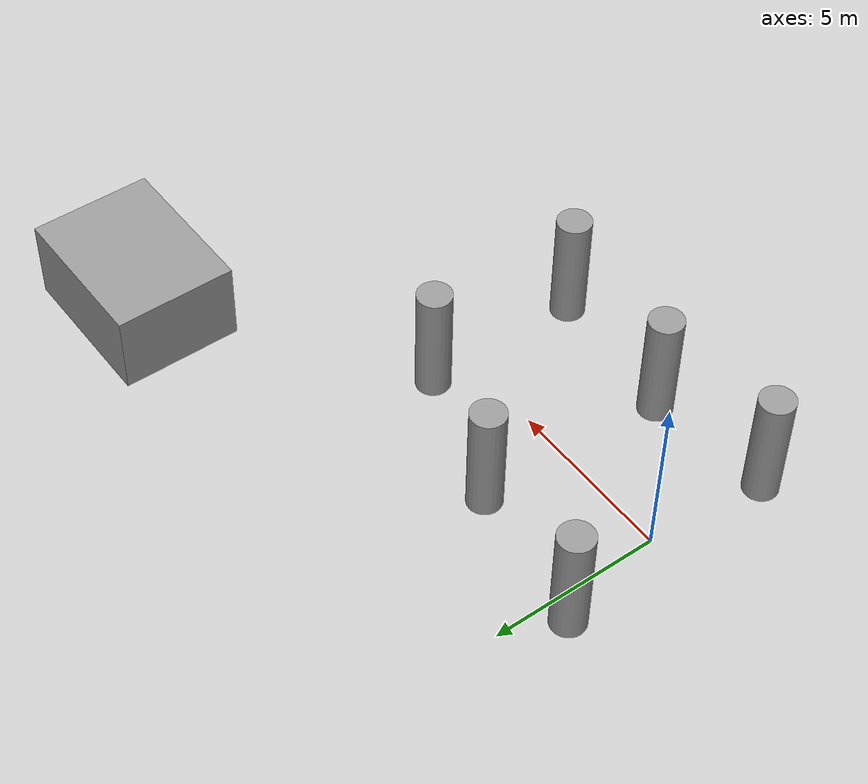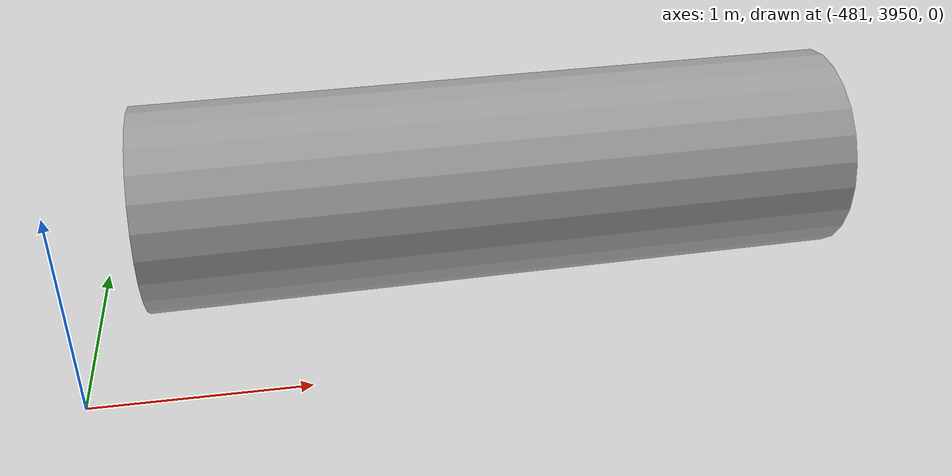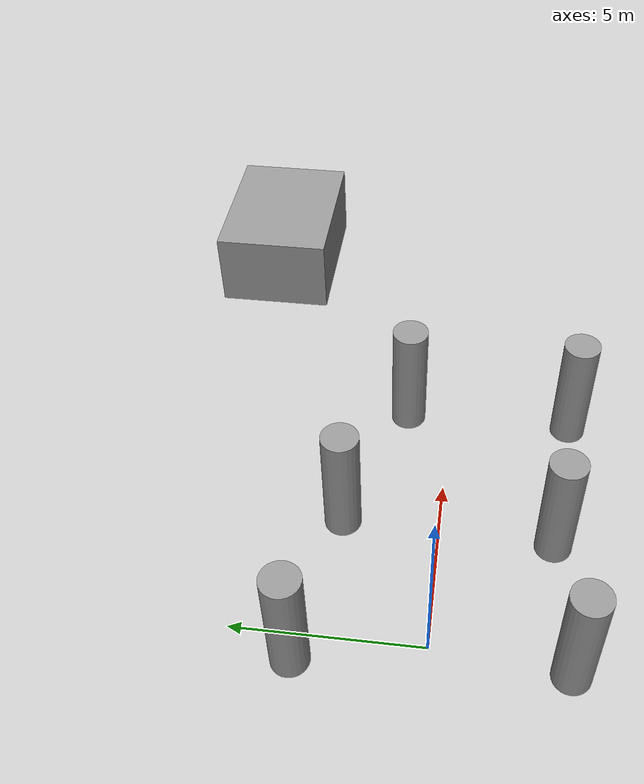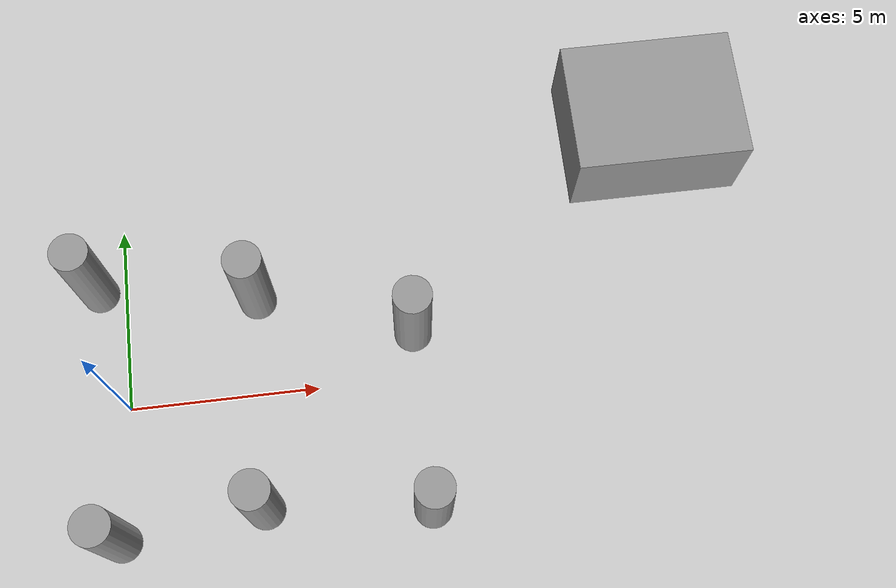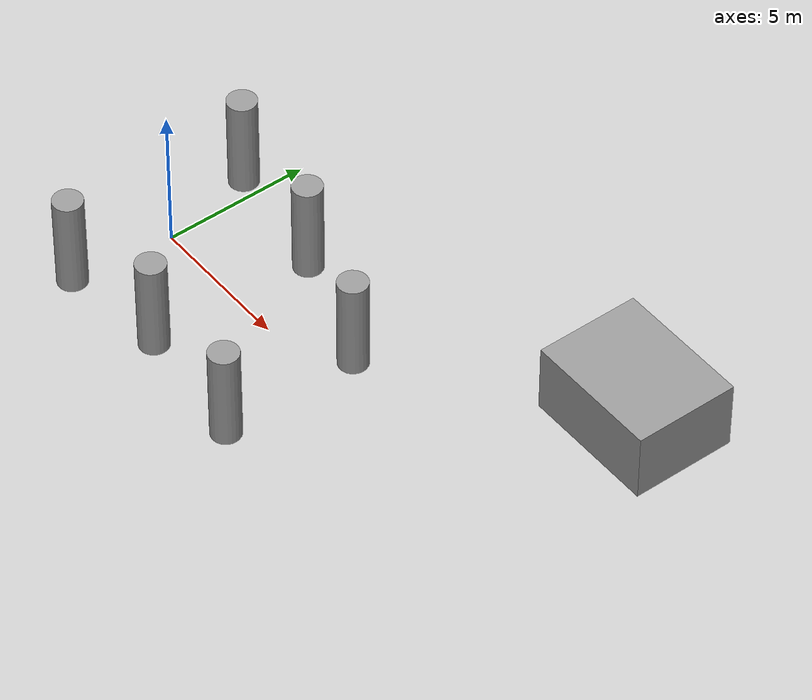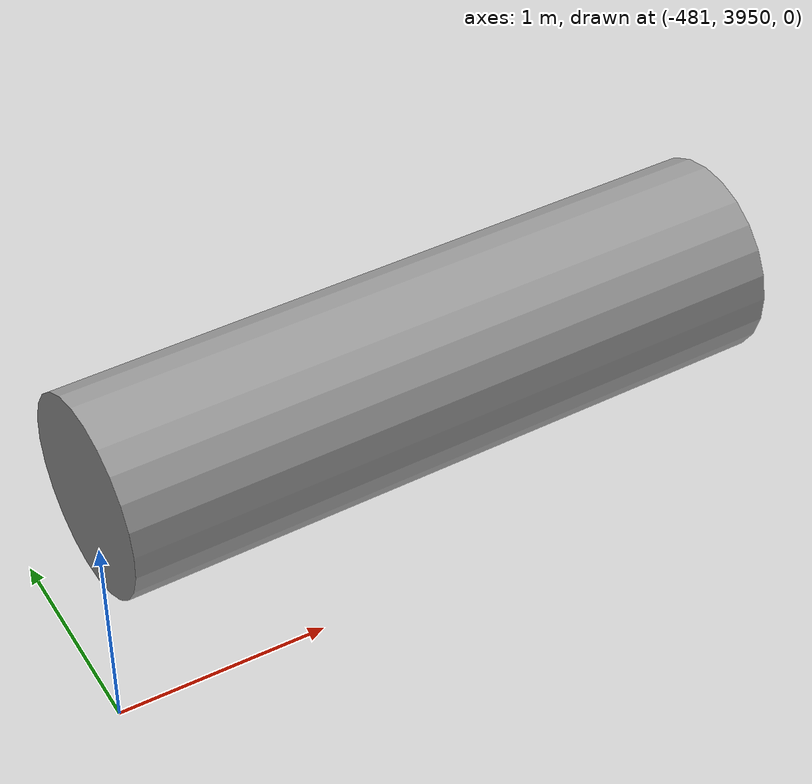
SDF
<sdf version="1.7">
 <world name="default">
  <physics type="ode">
   <ode>
    <solver>
     <type>quick</type>
     <iters>100</iters>
     <sor>1</sor>
     <use_dynamic_moi_rescaling>0</use_dynamic_moi_rescaling>
    </solver>
    <constraints>
     <cfm>0</cfm>
     <erp>0.9</erp>
     <contact_max_correcting_vel>0.1</contact_max_correcting_vel>
     <contact_surface_layer>0</contact_surface_layer>
    </constraints>
   </ode>
   <real_time_update_rate>-1</real_time_update_rate>
   <max_step_size>0.001</max_step_size>
   <real_time_factor>1</real_time_factor>
  </physics>
  <model name="ground_plane">
   <static>1</static>
   <link name="link">
    <collision name="collision">
     <geometry><plane><normal>0 0 1</normal><size>5000 5000</size></plane></geometry>
     <surface><friction><ode><mu>1</mu><mu2>1</mu2></ode></friction></surface>
    </collision>
    <visual name="runway">
     <pose>0 0 0.005 0 -0 0</pose>
     <cast_shadows>0</cast_shadows>
     <geometry><plane><normal>0 0 1</normal><size>1829 45</size></plane></geometry>
     <material>
      <script><uri>file://media/materials/scripts/gazebo.material</uri><name>Gazebo/Runway</name></script>
     </material>
    </visual>
   </link>
  </model>
  <light name="sun" type="directional">
   <pose>0 0 10 0 -0 0</pose>
   <diffuse>0.8 0.8 0.8 1</diffuse>
   <specular>0.2 0.2 0.2 1</specular>
   <attenuation>
    <range>1000</range>
    <constant>0.9</constant>
    <linear>0.01</linear>
    <quadratic>0.001</quadratic>
   </attenuation>
   <direction>-0.5 0.1 -0.9</direction>
   <spot><inner_angle>0</inner_angle><outer_angle>0</outer_angle><falloff>0</falloff></spot>
  </light>
  <gravity>0 0 -9.8</gravity>
  <magnetic_field>6e-06 2.3e-05 -4.2e-05</magnetic_field>
  <atmosphere type="adiabatic"/>
  <scene><ambient>0.4 0.4 0.4 1</ambient><background>0.7 0.7 0.7 1</background><shadows>1</shadows></scene>
  <spherical_coordinates>
   <surface_model>EARTH_WGS84</surface_model>
   <latitude_deg>0</latitude_deg>
   <longitude_deg>0</longitude_deg>
   <elevation>0</elevation>
   <heading_deg>0</heading_deg>
  </spherical_coordinates>
  <model name="unit_cylinder">
   <pose>3.36804 -3.05836 1.71249 0 0 -0.000168</pose>
   <link name="link">
    <inertial>
     <mass>1</mass>
     <inertia><ixx>0.145833</ixx><ixy>0</ixy><ixz>0</ixz><iyy>0.145833</iyy><iyz>0</iyz><izz>0.125</izz></inertia>
    </inertial>
    <collision name="collision">
     <geometry><cylinder><radius>0.5</radius><length>3.425</length></cylinder></geometry>
    </collision>
    <visual name="visual">
     <geometry><cylinder><radius>0.5</radius><length>3.425</length></cylinder></geometry>
     <material>
      <script><name>Gazebo/Grey</name><uri>file://media/materials/scripts/gazebo.material</uri></script>
     </material>
    </visual>
   </link>
  </model>
  <model name="unit_cylinder_clone_0">
   <pose>7.64412 1.23477 1.71249 0 0 -0.01514</pose>
   <link name="link">
    <inertial>
     <mass>1</mass>
     <inertia><ixx>0.145833</ixx><ixy>0</ixy><ixz>0</ixz><iyy>0.145833</iyy><iyz>0</iyz><izz>0.125</izz></inertia>
    </inertial>
    <collision name="collision">
     <geometry><cylinder><radius>0.5</radius><length>3.425</length></cylinder></geometry>
    </collision>
    <visual name="visual">
     <geometry><cylinder><radius>0.5</radius><length>3.425</length></cylinder></geometry>
     <material>
      <script><name>Gazebo/Grey</name><uri>file://media/materials/scripts/gazebo.material</uri></script>
     </material>
    </visual>
   </link>
  </model>
  <model name="unit_cylinder_clone_1">
   <pose>7.64632 -3.50159 1.71249 0 0 -5.8e-05</pose>
   <link name="link">
    <inertial>
     <mass>1</mass>
     <inertia><ixx>0.145833</ixx><ixy>0</ixy><ixz>0</ixz><iyy>0.145833</iyy><iyz>0</iyz><izz>0.125</izz></inertia>
    </inertial>
    <collision name="collision">
     <geometry><cylinder><radius>0.5</radius><length>3.425</length></cylinder></geometry>
    </collision>
    <visual name="visual">
     <geometry><cylinder><radius>0.5</radius><length>3.425</length></cylinder></geometry>
     <material>
      <script><name>Gazebo/Grey</name><uri>file://media/materials/scripts/gazebo.material</uri></script>
     </material>
    </visual>
   </link>
  </model>
  <model name="unit_cylinder_clone_2">
   <pose>-0.332742 -3.47485 1.71249 0 -0 4.2e-05</pose>
   <link name="link">
    <inertial>
     <mass>1</mass>
     <inertia><ixx>0.145833</ixx><ixy>0</ixy><ixz>0</ixz><iyy>0.145833</iyy><iyz>0</iyz><izz>0.125</izz></inertia>
    </inertial>
    <collision name="collision">
     <geometry><cylinder><radius>0.5</radius><length>3.425</length></cylinder></geometry>
    </collision>
    <visual name="visual">
     <geometry><cylinder><radius>0.5</radius><length>3.425</length></cylinder></geometry>
     <material>
      <script><name>Gazebo/Grey</name><uri>file://media/materials/scripts/gazebo.material</uri></script>
     </material>
    </visual>
   </link>
  </model>
  <model name="unit_cylinder_clone_3">
   <pose>-0.678736 3.28302 1.71249 0 -0 0.000357</pose>
   <link name="link">
    <inertial>
     <mass>1</mass>
     <inertia><ixx>0.145833</ixx><ixy>0</ixy><ixz>0</ixz><iyy>0.145833</iyy><iyz>0</iyz><izz>0.125</izz></inertia>
    </inertial>
    <collision name="collision">
     <geometry><cylinder><radius>0.5</radius><length>3.425</length></cylinder></geometry>
    </collision>
    <visual name="visual">
     <geometry><cylinder><radius>0.5</radius><length>3.425</length></cylinder></geometry>
     <material>
      <script><name>Gazebo/Grey</name><uri>file://media/materials/scripts/gazebo.material</uri></script>
     </material>
    </visual>
   </link>
  </model>
  <model name="unit_cylinder_clone_2_clone">
   <pose>-479.043 3950.86 0.5 -1.5708 -1.12645 -1.54372</pose>
   <link name="link">
    <inertial>
     <mass>1</mass>
     <inertia><ixx>0.145833</ixx><ixy>0</ixy><ixz>0</ixz><iyy>0.145833</iyy><iyz>0</iyz><izz>0.125</izz></inertia>
    </inertial>
    <collision name="collision">
     <geometry><cylinder><radius>0.5</radius><length>3.425</length></cylinder></geometry>
    </collision>
    <visual name="visual">
     <geometry><cylinder><radius>0.5</radius><length>3.425</length></cylinder></geometry>
     <material>
      <script><name>Gazebo/Grey</name><uri>file://media/materials/scripts/gazebo.material</uri></script>
     </material>
    </visual>
   </link>
  </model>
  <model name="unit_cylinder_clone_0_clone">
   <pose>3.55978 2.61567 1.71249 0 0 -0.01514</pose>
   <link name="link">
    <inertial>
     <mass>1</mass>
     <inertia><ixx>0.145833</ixx><ixy>0</ixy><ixz>0</ixz><iyy>0.145833</iyy><iyz>0</iyz><izz>0.125</izz></inertia>
    </inertial>
    <collision name="collision">
     <geometry><cylinder><radius>0.5</radius><length>3.425</length></cylinder></geometry>
    </collision>
    <visual name="visual">
     <geometry><cylinder><radius>0.5</radius><length>3.425</length></cylinder></geometry>
     <material>
      <script><name>Gazebo/Grey</name><uri>file://media/materials/scripts/gazebo.material</uri></script>
     </material>
    </visual>
   </link>
  </model>
  <model name="unit_box">
   <pose>14.7386 6.30002 1.19231 0 -0.000233 0.000279</pose>
   <link name="link">
    <inertial>
     <mass>1</mass>
     <inertia>
      <ixx>0.166667</ixx>
      <ixy>0</ixy>
      <ixz>0</ixz>
      <iyy>0.166667</iyy>
      <iyz>0</iyz>
      <izz>0.166667</izz>
     </inertia>
    </inertial>
    <collision name="collision"><geometry><box><size>4.60621 3.53851 2.38569</size></box></geometry></collision>
    <visual name="visual">
     <geometry><box><size>4.60621 3.53851 2.38569</size></box></geometry>
     <material>
      <script><name>Gazebo/Grey</name><uri>file://media/materials/scripts/gazebo.material</uri></script>
     </material>
    </visual>
   </link>
  </model>
 </world>
</sdf>
